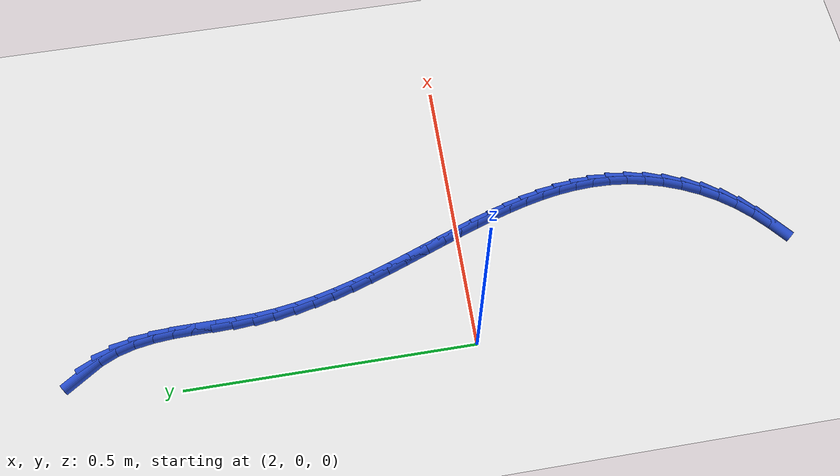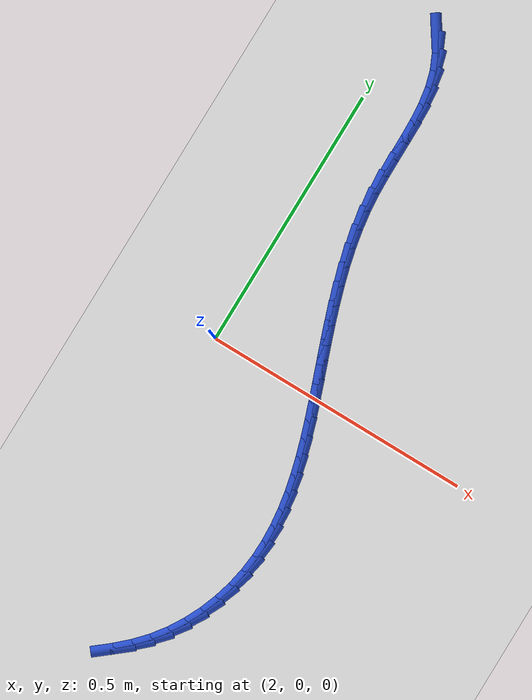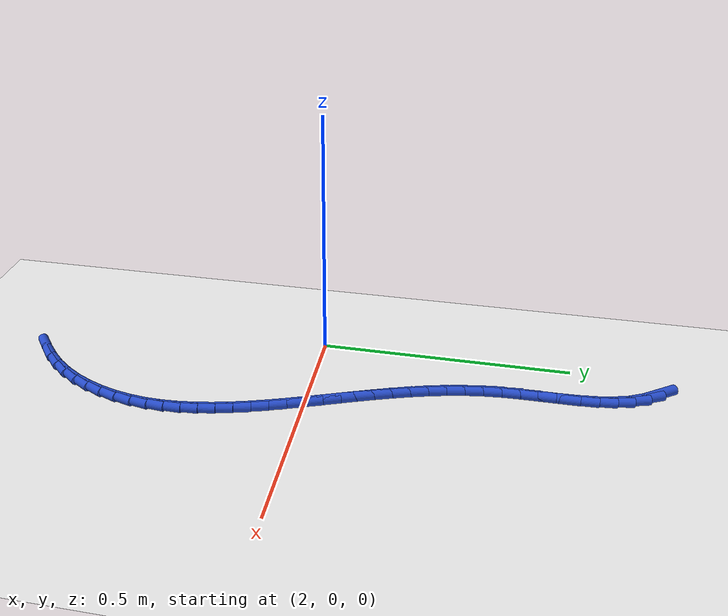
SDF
<sdf version="1.6">
 <world name="default">
  <model name="ground_plane">
   <static>1</static>
   <link name="link">
    <collision name="collision">
     <geometry><plane><normal>0 0 1</normal><size>100 100</size></plane></geometry>
     <surface><friction><ode><mu>100</mu><mu2>50</mu2></ode></friction></surface>
    </collision>
    <visual name="visual">
     <cast_shadows>0</cast_shadows>
     <geometry><plane><normal>0 0 1</normal><size>100 100</size></plane></geometry>
     <material>
      <script><uri>file://media/materials/scripts/gazebo.material</uri><name>Gazebo/WhiteGlow</name></script>
     </material>
    </visual>
   </link>
  </model>
  <model name="line">
   <link name="link_95">
    <pose>2.0541579500902785 0.6609321541589191 0.01 0 1.57 -0.9791753954534087</pose>
    <collision name="collision">
     <geometry><cylinder><radius>0.01</radius><length>0.08</length></cylinder></geometry>
    </collision>
    <visual name="visual">
     <material>
      <script><name>Gazebo/Blue</name><uri>file://media/materials/scripts/gazebo.material</uri></script>
     </material>
     <geometry><cylinder><radius>0.01</radius><length>0.08</length></cylinder></geometry>
    </visual>
   </link>
   <link name="link_96">
    <pose>2.071891774115295 0.634538835333566 0.01 0 1.57 -1.1393043256433084</pose>
    <collision name="collision">
     <geometry><cylinder><radius>0.01</radius><length>0.08</length></cylinder></geometry>
    </collision>
    <visual name="visual">
     <material>
      <script><name>Gazebo/Blue</name><uri>file://media/materials/scripts/gazebo.material</uri></script>
     </material>
     <geometry><cylinder><radius>0.01</radius><length>0.08</length></cylinder></geometry>
    </visual>
   </link>
   <link name="link_97">
    <pose>2.085005917374673 0.6060563343062061 0.01 0 1.57 -1.29279519276642</pose>
    <collision name="collision">
     <geometry><cylinder><radius>0.01</radius><length>0.08</length></cylinder></geometry>
    </collision>
    <visual name="visual">
     <material>
      <script><name>Gazebo/Blue</name><uri>file://media/materials/scripts/gazebo.material</uri></script>
     </material>
     <geometry><cylinder><radius>0.01</radius><length>0.08</length></cylinder></geometry>
    </visual>
   </link>
   <link name="link_98">
    <pose>2.0937301095691407 0.5754871173735745 0.01 0 1.57 -1.4103908422634501</pose>
    <collision name="collision">
     <geometry><cylinder><radius>0.01</radius><length>0.08</length></cylinder></geometry>
    </collision>
    <visual name="visual">
     <material>
      <script><name>Gazebo/Blue</name><uri>file://media/materials/scripts/gazebo.material</uri></script>
     </material>
     <geometry><cylinder><radius>0.01</radius><length>0.08</length></cylinder></geometry>
    </visual>
   </link>
   <link name="link_99">
    <pose>2.0989574420957418 0.5431788549642149 0.01 0 1.57 -1.4929942863222063</pose>
    <collision name="collision">
     <geometry><cylinder><radius>0.01</radius><length>0.08</length></cylinder></geometry>
    </collision>
    <visual name="visual">
     <material>
      <script><name>Gazebo/Blue</name><uri>file://media/materials/scripts/gazebo.material</uri></script>
     </material>
     <geometry><cylinder><radius>0.01</radius><length>0.08</length></cylinder></geometry>
    </visual>
   </link>
   <link name="link_100">
    <pose>2.101584503862258 0.5094810375622537 0.01 0 1.57 -1.544221231291467</pose>
    <collision name="collision">
     <geometry><cylinder><radius>0.01</radius><length>0.08</length></cylinder></geometry>
    </collision>
    <visual name="visual">
     <material>
      <script><name>Gazebo/Blue</name><uri>file://media/materials/scripts/gazebo.material</uri></script>
     </material>
     <geometry><cylinder><radius>0.01</radius><length>0.08</length></cylinder></geometry>
    </visual>
   </link>
   <link name="link_101">
    <pose>2.1025078837764704 0.4747431556518149 0.01 0 1.57 -1.567514034382817</pose>
    <collision name="collision">
     <geometry><cylinder><radius>0.01</radius><length>0.08</length></cylinder></geometry>
    </collision>
    <visual name="visual">
     <material>
      <script><name>Gazebo/Blue</name><uri>file://media/materials/scripts/gazebo.material</uri></script>
     </material>
     <geometry><cylinder><radius>0.01</radius><length>0.08</length></cylinder></geometry>
    </visual>
   </link>
   <link name="link_102">
    <pose>2.102624170746161 0.4393146997170251 0.01 0 1.57 -1.5650433686709613</pose>
    <collision name="collision">
     <geometry><cylinder><radius>0.01</radius><length>0.08</length></cylinder></geometry>
    </collision>
    <visual name="visual">
     <material>
      <script><name>Gazebo/Blue</name><uri>file://media/materials/scripts/gazebo.material</uri></script>
     </material>
     <geometry><cylinder><radius>0.01</radius><length>0.08</length></cylinder></geometry>
    </visual>
   </link>
   <link name="link_103">
    <pose>2.1028299536791115 0.4035451602420087 0.01 0 1.57 -1.5374800779266227</pose>
    <collision name="collision">
     <geometry><cylinder><radius>0.01</radius><length>0.08</length></cylinder></geometry>
    </collision>
    <visual name="visual">
     <material>
      <script><name>Gazebo/Blue</name><uri>file://media/materials/scripts/gazebo.material</uri></script>
     </material>
     <geometry><cylinder><radius>0.01</radius><length>0.08</length></cylinder></geometry>
    </visual>
   </link>
   <link name="link_104">
    <pose>2.1040218214831024 0.36778402771089197 0.01 0 1.57 -1.485994577408197</pose>
    <collision name="collision">
     <geometry><cylinder><radius>0.01</radius><length>0.08</length></cylinder></geometry>
    </collision>
    <visual name="visual">
     <material>
      <script><name>Gazebo/Blue</name><uri>file://media/materials/scripts/gazebo.material</uri></script>
     </material>
     <geometry><cylinder><radius>0.01</radius><length>0.08</length></cylinder></geometry>
    </visual>
   </link>
   <link name="link_105">
    <pose>2.107033092821385 0.3323596462372403 0.01 0 1.57 -1.4289736203582553</pose>
    <collision name="collision">
     <geometry><cylinder><radius>0.01</radius><length>0.08</length></cylinder></geometry>
    </collision>
    <visual name="visual">
     <material>
      <script><name>Gazebo/Blue</name><uri>file://media/materials/scripts/gazebo.material</uri></script>
     </material>
     <geometry><cylinder><radius>0.01</radius><length>0.08</length></cylinder></geometry>
    </visual>
   </link>
   <link name="link_106">
    <pose>2.1120279975905354 0.297376735083766 0.01 0 1.57 -1.3782321537281952</pose>
    <collision name="collision">
     <geometry><cylinder><radius>0.01</radius><length>0.08</length></cylinder></geometry>
    </collision>
    <visual name="visual">
     <material>
      <script><name>Gazebo/Blue</name><uri>file://media/materials/scripts/gazebo.material</uri></script>
     </material>
     <geometry><cylinder><radius>0.01</radius><length>0.08</length></cylinder></geometry>
    </visual>
   </link>
   <link name="link_107">
    <pose>2.118768678169631 0.26280562661922735 0.01 0 1.57 -1.334219657668788</pose>
    <collision name="collision">
     <geometry><cylinder><radius>0.01</radius><length>0.08</length></cylinder></geometry>
    </collision>
    <visual name="visual">
     <material>
      <script><name>Gazebo/Blue</name><uri>file://media/materials/scripts/gazebo.material</uri></script>
     </material>
     <geometry><cylinder><radius>0.01</radius><length>0.08</length></cylinder></geometry>
    </visual>
   </link>
   <link name="link_108">
    <pose>2.127011787430383 0.22861481849279577 0.01 0 1.57 -1.2970636217609814</pose>
    <collision name="collision">
     <geometry><cylinder><radius>0.01</radius><length>0.08</length></cylinder></geometry>
    </collision>
    <visual name="visual">
     <material>
      <script><name>Gazebo/Blue</name><uri>file://media/materials/scripts/gazebo.material</uri></script>
     </material>
     <geometry><cylinder><radius>0.01</radius><length>0.08</length></cylinder></geometry>
    </visual>
   </link>
   <link name="link_109">
    <pose>2.136513978244504 0.19477280835364388 0.01 0 1.57 -1.2667854009348796</pose>
    <collision name="collision">
     <geometry><cylinder><radius>0.01</radius><length>0.08</length></cylinder></geometry>
    </collision>
    <visual name="visual">
     <material>
      <script><name>Gazebo/Blue</name><uri>file://media/materials/scripts/gazebo.material</uri></script>
     </material>
     <geometry><cylinder><radius>0.01</radius><length>0.08</length></cylinder></geometry>
    </visual>
   </link>
   <link name="link_110">
    <pose>2.1470319034837066 0.16124809385094271 0.01 0 1.57 -1.2433523555129156</pose>
    <collision name="collision">
     <geometry><cylinder><radius>0.01</radius><length>0.08</length></cylinder></geometry>
    </collision>
    <visual name="visual">
     <material>
      <script><name>Gazebo/Blue</name><uri>file://media/materials/scripts/gazebo.material</uri></script>
     </material>
     <geometry><cylinder><radius>0.01</radius><length>0.08</length></cylinder></geometry>
    </visual>
   </link>
   <link name="link_111">
    <pose>2.1583222160197018 0.12800917263386485 0.01 0 1.57 -1.2267207342082884</pose>
    <collision name="collision">
     <geometry><cylinder><radius>0.01</radius><length>0.08</length></cylinder></geometry>
    </collision>
    <visual name="visual">
     <material>
      <script><name>Gazebo/Blue</name><uri>file://media/materials/scripts/gazebo.material</uri></script>
     </material>
     <geometry><cylinder><radius>0.01</radius><length>0.08</length></cylinder></geometry>
    </visual>
   </link>
   <link name="link_112">
    <pose>2.1701415687242025 0.09502454235158138 0.01 0 1.57 -1.2168684850656353</pose>
    <collision name="collision">
     <geometry><cylinder><radius>0.01</radius><length>0.08</length></cylinder></geometry>
    </collision>
    <visual name="visual">
     <material>
      <script><name>Gazebo/Blue</name><uri>file://media/materials/scripts/gazebo.material</uri></script>
     </material>
     <geometry><cylinder><radius>0.01</radius><length>0.08</length></cylinder></geometry>
    </visual>
   </link>
   <link name="link_113">
    <pose>2.1822466144689208 0.062262700653264745 0.01 0 1.57 -1.2138186555289474</pose>
    <collision name="collision">
     <geometry><cylinder><radius>0.01</radius><length>0.08</length></cylinder></geometry>
    </collision>
    <visual name="visual">
     <material>
      <script><name>Gazebo/Blue</name><uri>file://media/materials/scripts/gazebo.material</uri></script>
     </material>
     <geometry><cylinder><radius>0.01</radius><length>0.08</length></cylinder></geometry>
    </visual>
   </link>
   <link name="link_114">
    <pose>2.194394006125569 0.029692145188086137 0.01 0 1.57 -1.2176543621460345</pose>
    <collision name="collision">
     <geometry><cylinder><radius>0.01</radius><length>0.08</length></cylinder></geometry>
    </collision>
    <visual name="visual">
     <material>
      <script><name>Gazebo/Blue</name><uri>file://media/materials/scripts/gazebo.material</uri></script>
     </material>
     <geometry><cylinder><radius>0.01</radius><length>0.08</length></cylinder></geometry>
    </visual>
   </link>
   <link name="link_115">
    <pose>2.2063403965658575 -0.0027186263947819103 0.01 0 1.57 -1.228525844985959</pose>
    <collision name="collision">
     <geometry><cylinder><radius>0.01</radius><length>0.08</length></cylinder></geometry>
    </collision>
    <visual name="visual">
     <material>
      <script><name>Gazebo/Blue</name><uri>file://media/materials/scripts/gazebo.material</uri></script>
     </material>
     <geometry><cylinder><radius>0.01</radius><length>0.08</length></cylinder></geometry>
    </visual>
   </link>
   <link name="link_116">
    <pose>2.2178424386615005 -0.03500111644616798 0.01 0 1.57 -1.2466491536075999</pose>
    <collision name="collision">
     <geometry><cylinder><radius>0.01</radius><length>0.08</length></cylinder></geometry>
    </collision>
    <visual name="visual">
     <material>
      <script><name>Gazebo/Blue</name><uri>file://media/materials/scripts/gazebo.material</uri></script>
     </material>
     <geometry><cylinder><radius>0.01</radius><length>0.08</length></cylinder></geometry>
    </visual>
   </link>
   <link name="link_117">
    <pose>2.22865678528421 -0.06718682731690108 0.01 0 1.57 -1.2722947346995375</pose>
    <collision name="collision">
     <geometry><cylinder><radius>0.01</radius><length>0.08</length></cylinder></geometry>
    </collision>
    <visual name="visual">
     <material>
      <script><name>Gazebo/Blue</name><uri>file://media/materials/scripts/gazebo.material</uri></script>
     </material>
     <geometry><cylinder><radius>0.01</radius><length>0.08</length></cylinder></geometry>
    </visual>
   </link>
   <link name="link_118">
    <pose>2.2385400893056975 -0.09930726135780778 0.01 0 1.57 -1.3057628100058152</pose>
    <collision name="collision">
     <geometry><cylinder><radius>0.01</radius><length>0.08</length></cylinder></geometry>
    </collision>
    <visual name="visual">
     <material>
      <script><name>Gazebo/Blue</name><uri>file://media/materials/scripts/gazebo.material</uri></script>
     </material>
     <geometry><cylinder><radius>0.01</radius><length>0.08</length></cylinder></geometry>
    </visual>
   </link>
   <link name="link_119">
    <pose>2.247249003597674 -0.13139392091971702 0.01 0 1.57 -1.347341325207918</pose>
    <collision name="collision">
     <geometry><cylinder><radius>0.01</radius><length>0.08</length></cylinder></geometry>
    </collision>
    <visual name="visual">
     <material>
      <script><name>Gazebo/Blue</name><uri>file://media/materials/scripts/gazebo.material</uri></script>
     </material>
     <geometry><cylinder><radius>0.01</radius><length>0.08</length></cylinder></geometry>
    </visual>
   </link>
   <link name="link_120">
    <pose>2.254540181031854 -0.16347830835345706 0.01 0 1.57 -1.3972421799147152</pose>
    <collision name="collision">
     <geometry><cylinder><radius>0.01</radius><length>0.08</length></cylinder></geometry>
    </collision>
    <visual name="visual">
     <material>
      <script><name>Gazebo/Blue</name><uri>file://media/materials/scripts/gazebo.material</uri></script>
     </material>
     <geometry><cylinder><radius>0.01</radius><length>0.08</length></cylinder></geometry>
    </visual>
   </link>
   <link name="link_121">
    <pose>2.2601702744799472 -0.19559192600985603 0.01 0 1.57 -1.455513721766781</pose>
    <collision name="collision">
     <geometry><cylinder><radius>0.01</radius><length>0.08</length></cylinder></geometry>
    </collision>
    <visual name="visual">
     <material>
      <script><name>Gazebo/Blue</name><uri>file://media/materials/scripts/gazebo.material</uri></script>
     </material>
     <geometry><cylinder><radius>0.01</radius><length>0.08</length></cylinder></geometry>
    </visual>
   </link>
   <link name="link_122">
    <pose>2.263895936813668 -0.22776627623974305 0.01 0 1.57 -1.5219337612528254</pose>
    <collision name="collision">
     <geometry><cylinder><radius>0.01</radius><length>0.08</length></cylinder></geometry>
    </collision>
    <visual name="visual">
     <material>
      <script><name>Gazebo/Blue</name><uri>file://media/materials/scripts/gazebo.material</uri></script>
     </material>
     <geometry><cylinder><radius>0.01</radius><length>0.08</length></cylinder></geometry>
    </visual>
   </link>
   <link name="link_123">
    <pose>2.2654738209047265 -0.2600328613939445 0.01 0 1.57 1.5456940617500343</pose>
    <collision name="collision">
     <geometry><cylinder><radius>0.01</radius><length>0.08</length></cylinder></geometry>
    </collision>
    <visual name="visual">
     <material>
      <script><name>Gazebo/Blue</name><uri>file://media/materials/scripts/gazebo.material</uri></script>
     </material>
     <geometry><cylinder><radius>0.01</radius><length>0.08</length></cylinder></geometry>
    </visual>
   </link>
   <link name="link_124">
    <pose>2.2646605796248362 -0.2924231838232895 0.01 0 1.57 1.4652549654302434</pose>
    <collision name="collision">
     <geometry><cylinder><radius>0.01</radius><length>0.08</length></cylinder></geometry>
    </collision>
    <visual name="visual">
     <material>
      <script><name>Gazebo/Blue</name><uri>file://media/materials/scripts/gazebo.material</uri></script>
     </material>
     <geometry><cylinder><radius>0.01</radius><length>0.08</length></cylinder></geometry>
    </visual>
   </link>
   <link name="link_125">
    <pose>2.261212865845709 -0.32496874587860625 0.01 0 1.57 1.3803647152197458</pose>
    <collision name="collision">
     <geometry><cylinder><radius>0.01</radius><length>0.08</length></cylinder></geometry>
    </collision>
    <visual name="visual">
     <material>
      <script><name>Gazebo/Blue</name><uri>file://media/materials/scripts/gazebo.material</uri></script>
     </material>
     <geometry><cylinder><radius>0.01</radius><length>0.08</length></cylinder></geometry>
    </visual>
   </link>
   <link name="link_126">
    <pose>2.2549106770063836 -0.3576619668017282 0.01 0 1.57 1.295143977238691</pose>
    <collision name="collision">
     <geometry><cylinder><radius>0.01</radius><length>0.08</length></cylinder></geometry>
    </collision>
    <visual name="visual">
     <material>
      <script><name>Gazebo/Blue</name><uri>file://media/materials/scripts/gazebo.material</uri></script>
     </material>
     <geometry><cylinder><radius>0.01</radius><length>0.08</length></cylinder></geometry>
    </visual>
   </link>
   <link name="link_127">
    <pose>2.2457043365495313 -0.39021010870687406 0.01 0 1.57 1.2095417382495253</pose>
    <collision name="collision">
     <geometry><cylinder><radius>0.01</radius><length>0.08</length></cylinder></geometry>
    </collision>
    <visual name="visual">
     <material>
      <script><name>Gazebo/Blue</name><uri>file://media/materials/scripts/gazebo.material</uri></script>
     </material>
     <geometry><cylinder><radius>0.01</radius><length>0.08</length></cylinder></geometry>
    </visual>
   </link>
   <link name="link_128">
    <pose>2.233619654192907 -0.42219405576879593 0.01 0 1.57 1.1217871464608653</pose>
    <collision name="collision">
     <geometry><cylinder><radius>0.01</radius><length>0.08</length></cylinder></geometry>
    </collision>
    <visual name="visual">
     <material>
      <script><name>Gazebo/Blue</name><uri>file://media/materials/scripts/gazebo.material</uri></script>
     </material>
     <geometry><cylinder><radius>0.01</radius><length>0.08</length></cylinder></geometry>
    </visual>
   </link>
   <link name="link_129">
    <pose>2.218682777791335 -0.4531941260584509 0.01 0 1.57 1.030252227587008</pose>
    <collision name="collision">
     <geometry><cylinder><radius>0.01</radius><length>0.08</length></cylinder></geometry>
    </collision>
    <visual name="visual">
     <material>
      <script><name>Gazebo/Blue</name><uri>file://media/materials/scripts/gazebo.material</uri></script>
     </material>
     <geometry><cylinder><radius>0.01</radius><length>0.08</length></cylinder></geometry>
    </visual>
   </link>
   <link name="link_130">
    <pose>2.200919855199643 -0.4827906376467966 0.01 0 1.57 0.9334794174443879</pose>
    <collision name="collision">
     <geometry><cylinder><radius>0.01</radius><length>0.08</length></cylinder></geometry>
    </collision>
    <visual name="visual">
     <material>
      <script><name>Gazebo/Blue</name><uri>file://media/materials/scripts/gazebo.material</uri></script>
     </material>
     <geometry><cylinder><radius>0.01</radius><length>0.08</length></cylinder></geometry>
    </visual>
   </link>
   <link name="link_131">
    <pose>2.1803570342726584 -0.5105639086047911 0.01 0 1.57 0.8324630084902755</pose>
    <collision name="collision">
     <geometry><cylinder><radius>0.01</radius><length>0.08</length></cylinder></geometry>
    </collision>
    <visual name="visual">
     <material>
      <script><name>Gazebo/Blue</name><uri>file://media/materials/scripts/gazebo.material</uri></script>
     </material>
     <geometry><cylinder><radius>0.01</radius><length>0.08</length></cylinder></geometry>
    </visual>
   </link>
   <link name="link_132">
    <pose>2.157065940808551 -0.5361574501445157 0.01 0 1.57 0.7474900963079989</pose>
    <collision name="collision">
     <geometry><cylinder><radius>0.01</radius><length>0.08</length></cylinder></geometry>
    </collision>
    <visual name="visual">
     <material>
      <script><name>Gazebo/Blue</name><uri>file://media/materials/scripts/gazebo.material</uri></script>
     </material>
     <geometry><cylinder><radius>0.01</radius><length>0.08</length></cylinder></geometry>
    </visual>
   </link>
   <link name="link_133">
    <pose>2.1315473633990827 -0.559811109701482 0.01 0 1.57 0.6897733565445876</pose>
    <collision name="collision">
     <geometry><cylinder><radius>0.01</radius><length>0.08</length></cylinder></geometry>
    </collision>
    <visual name="visual">
     <material>
      <script><name>Gazebo/Blue</name><uri>file://media/materials/scripts/gazebo.material</uri></script>
     </material>
     <geometry><cylinder><radius>0.01</radius><length>0.08</length></cylinder></geometry>
    </visual>
   </link>
  </model>
 </world>
</sdf>
